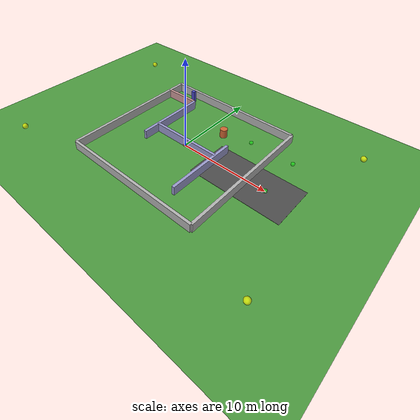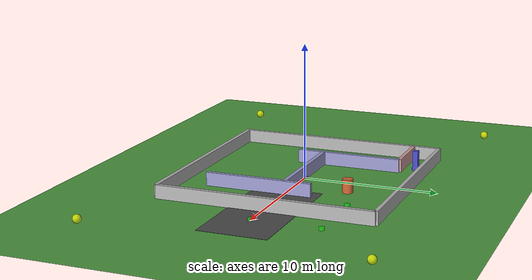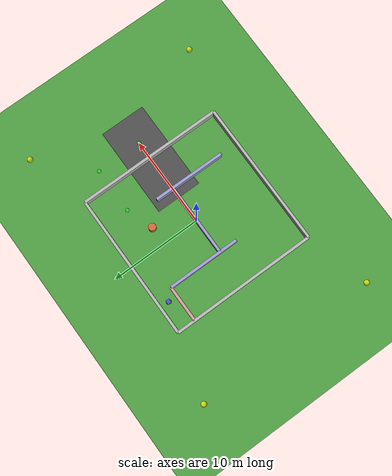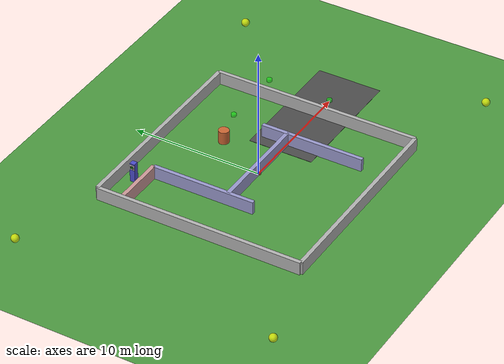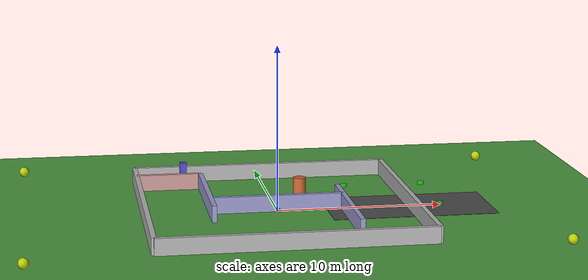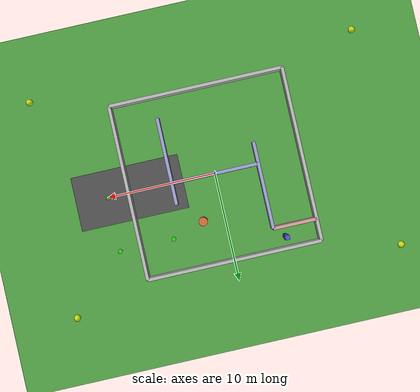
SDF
<?xml version="1.0" ?>
<sdf version="1.6">
  <world name="test_yard">

    <!-- Physics -->
    <physics type="ode">
      <max_step_size>0.001</max_step_size>
      <real_time_factor>1</real_time_factor>
      <real_time_update_rate>1000</real_time_update_rate>
    </physics>

    <!-- Gazebo ROS State Plugin (enables set_entity_state service) -->
    <plugin name="gazebo_ros_state" filename="libgazebo_ros_state.so">
      <ros>
        <namespace>/gazebo</namespace>
      </ros>
      <update_rate>1.0</update_rate>
    </plugin>

    <!-- Lighting -->
    <include>
      <uri>model://sun</uri>
    </include>

    <!-- Ground plane (grass texture) -->
    <model name="ground_plane">
      <static>true</static>
      <link name="link">
        <collision name="collision">
          <geometry>
            <plane>
              <normal>0 0 1</normal>
              <size>100 100</size>
            </plane>
          </geometry>
          <surface>
            <friction>
              <ode>
                <mu>0.8</mu>
                <mu2>0.8</mu2>
              </ode>
            </friction>
          </surface>
        </collision>
        <visual name="visual">
          <cast_shadows>false</cast_shadows>
          <geometry>
            <plane>
              <normal>0 0 1</normal>
              <size>100 100</size>
            </plane>
          </geometry>
          <material>
            <script>
              <uri>file://media/materials/scripts/gazebo.material</uri>
              <name>Gazebo/Grass</name>
            </script>
          </material>
        </visual>
      </link>
    </model>

    <!-- Simple Maze for Obstacle Avoidance Testing -->
    <!-- Maze layout: corridors ~2.5m wide with turns and dead end -->
    <!-- Wall height: 1.0m (detectable by LiDAR) -->
    <!-- Wall thickness: 0.3m -->

    <!-- Maze outer walls (forming perimeter) -->
    <!-- North wall -->
    <model name="maze_wall_north">
      <pose>0 8 0.5 0 0 0</pose>
      <static>true</static>
      <link name="link">
        <collision name="collision">
          <geometry>
            <box>
              <size>16.0 0.3 1.0</size>
            </box>
          </geometry>
        </collision>
        <visual name="visual">
          <geometry>
            <box>
              <size>16.0 0.3 1.0</size>
            </box>
          </geometry>
          <material>
            <ambient>0.7 0.7 0.7 1</ambient>
            <diffuse>0.7 0.7 0.7 1</diffuse>
          </material>
        </visual>
      </link>
    </model>

    <!-- South wall -->
    <model name="maze_wall_south">
      <pose>0 -8 0.5 0 0 0</pose>
      <static>true</static>
      <link name="link">
        <collision name="collision">
          <geometry>
            <box>
              <size>16.0 0.3 1.0</size>
            </box>
          </geometry>
        </collision>
        <visual name="visual">
          <geometry>
            <box>
              <size>16.0 0.3 1.0</size>
            </box>
          </geometry>
          <material>
            <ambient>0.7 0.7 0.7 1</ambient>
            <diffuse>0.7 0.7 0.7 1</diffuse>
          </material>
        </visual>
      </link>
    </model>

    <!-- West wall -->
    <model name="maze_wall_west">
      <pose>-8 0 0.5 0 0 0</pose>
      <static>true</static>
      <link name="link">
        <collision name="collision">
          <geometry>
            <box>
              <size>0.3 16.0 1.0</size>
            </box>
          </geometry>
        </collision>
        <visual name="visual">
          <geometry>
            <box>
              <size>0.3 16.0 1.0</size>
            </box>
          </geometry>
          <material>
            <ambient>0.7 0.7 0.7 1</ambient>
            <diffuse>0.7 0.7 0.7 1</diffuse>
          </material>
        </visual>
      </link>
    </model>

    <!-- East wall -->
    <model name="maze_wall_east">
      <pose>8 0 0.5 0 0 0</pose>
      <static>true</static>
      <link name="link">
        <collision name="collision">
          <geometry>
            <box>
              <size>0.3 16.0 1.0</size>
            </box>
          </geometry>
        </collision>
        <visual name="visual">
          <geometry>
            <box>
              <size>0.3 16.0 1.0</size>
            </box>
          </geometry>
          <material>
            <ambient>0.7 0.7 0.7 1</ambient>
            <diffuse>0.7 0.7 0.7 1</diffuse>
          </material>
        </visual>
      </link>
    </model>

    <!-- Internal maze walls creating corridors -->
    <!-- Vertical divider wall 1 (creates main corridor on left) -->
    <model name="maze_divider_1">
      <pose>-4 2 0.5 0 0 0</pose>
      <static>true</static>
      <link name="link">
        <collision name="collision">
          <geometry>
            <box>
              <size>0.3 8.0 1.0</size>
            </box>
          </geometry>
        </collision>
        <visual name="visual">
          <geometry>
            <box>
              <size>0.3 8.0 1.0</size>
            </box>
          </geometry>
          <material>
            <ambient>0.6 0.6 0.8 1</ambient>
            <diffuse>0.6 0.6 0.8 1</diffuse>
          </material>
        </visual>
      </link>
    </model>

    <!-- Horizontal wall 1 (creates turn) -->
    <model name="maze_horizontal_1">
      <pose>0 0 0.5 0 0 0</pose>
      <static>true</static>
      <link name="link">
        <collision name="collision">
          <geometry>
            <box>
              <size>8.0 0.3 1.0</size>
            </box>
          </geometry>
        </collision>
        <visual name="visual">
          <geometry>
            <box>
              <size>8.0 0.3 1.0</size>
            </box>
          </geometry>
          <material>
            <ambient>0.6 0.6 0.8 1</ambient>
            <diffuse>0.6 0.6 0.8 1</diffuse>
          </material>
        </visual>
      </link>
    </model>

    <!-- Vertical divider wall 2 (creates corridor on right) -->
    <model name="maze_divider_2">
      <pose>4 -2 0.5 0 0 0</pose>
      <static>true</static>
      <link name="link">
        <collision name="collision">
          <geometry>
            <box>
              <size>0.3 8.0 1.0</size>
            </box>
          </geometry>
        </collision>
        <visual name="visual">
          <geometry>
            <box>
              <size>0.3 8.0 1.0</size>
            </box>
          </geometry>
          <material>
            <ambient>0.6 0.6 0.8 1</ambient>
            <diffuse>0.6 0.6 0.8 1</diffuse>
          </material>
        </visual>
      </link>
    </model>

    <!-- Dead-end wall (tests backing up behavior) -->
    <model name="maze_deadend">
      <pose>-6 6 0.5 0 0 0</pose>
      <static>true</static>
      <link name="link">
        <collision name="collision">
          <geometry>
            <box>
              <size>4.0 0.3 1.0</size>
            </box>
          </geometry>
        </collision>
        <visual name="visual">
          <geometry>
            <box>
              <size>4.0 0.3 1.0</size>
            </box>
          </geometry>
          <material>
            <ambient>0.8 0.6 0.6 1</ambient>
            <diffuse>0.8 0.6 0.6 1</diffuse>
          </material>
        </visual>
      </link>
    </model>

    <!-- Obstacle in corridor (tests navigation around object in tight space) -->
    <model name="maze_obstacle_cylinder">
      <pose>2 4 0.5 0 0 0</pose>
      <static>true</static>
      <link name="link">
        <collision name="collision">
          <geometry>
            <cylinder>
              <radius>0.4</radius>
              <length>1.0</length>
            </cylinder>
          </geometry>
        </collision>
        <visual name="visual">
          <geometry>
            <cylinder>
              <radius>0.4</radius>
              <length>1.0</length>
            </cylinder>
          </geometry>
          <material>
            <ambient>0.8 0.4 0.2 1</ambient>
            <diffuse>0.8 0.4 0.2 1</diffuse>
          </material>
        </visual>
      </link>
    </model>

    <!-- Pavement section (different friction) -->
    <model name="pavement">
      <pose>8 0 0.01 0 0 0</pose>
      <static>true</static>
      <link name="link">
        <collision name="collision">
          <geometry>
            <box>
              <size>10.0 5.0 0.02</size>
            </box>
          </geometry>
          <surface>
            <friction>
              <ode>
                <mu>1.0</mu>
                <mu2>1.0</mu2>
              </ode>
            </friction>
          </surface>
        </collision>
        <visual name="visual">
          <geometry>
            <box>
              <size>10.0 5.0 0.02</size>
            </box>
          </geometry>
          <material>
            <ambient>0.3 0.3 0.3 1</ambient>
            <diffuse>0.3 0.3 0.3 1</diffuse>
          </material>
        </visual>
      </link>
    </model>

    <!-- GPS waypoint markers (visual only, for reference) -->
    <model name="waypoint_1">
      <pose>10 0 0.1 0 0 0</pose>
      <static>true</static>
      <link name="link">
        <visual name="visual">
          <geometry>
            <cylinder>
              <radius>0.2</radius>
              <length>0.2</length>
            </cylinder>
          </geometry>
          <material>
            <ambient>0 1 0 0.5</ambient>
            <diffuse>0 1 0 0.5</diffuse>
          </material>
        </visual>
      </link>
    </model>

    <model name="waypoint_2">
      <pose>10 5 0.1 0 0 0</pose>
      <static>true</static>
      <link name="link">
        <visual name="visual">
          <geometry>
            <cylinder>
              <radius>0.2</radius>
              <length>0.2</length>
            </cylinder>
          </geometry>
          <material>
            <ambient>0 1 0 0.5</ambient>
            <diffuse>0 1 0 0.5</diffuse>
          </material>
        </visual>
      </link>
    </model>

    <model name="waypoint_3">
      <pose>5 5 0.1 0 0 0</pose>
      <static>true</static>
      <link name="link">
        <visual name="visual">
          <geometry>
            <cylinder>
              <radius>0.2</radius>
              <length>0.2</length>
            </cylinder>
          </geometry>
          <material>
            <ambient>0 1 0 0.5</ambient>
            <diffuse>0 1 0 0.5</diffuse>
          </material>
        </visual>
      </link>
    </model>

    <model name="waypoint_4">
      <pose>0 0 0.1 0 0 0</pose>
      <static>true</static>
      <link name="link">
        <visual name="visual">
          <geometry>
            <cylinder>
              <radius>0.2</radius>
              <length>0.2</length>
            </cylinder>
          </geometry>
          <material>
            <ambient>1 0 0 0.5</ambient>
            <diffuse>1 0 0 0.5</diffuse>
          </material>
        </visual>
      </link>
    </model>

    <!-- Include person model from external file (enables plugins to load correctly) -->
    <include>
      <uri>model://person_with_apriltag</uri>
      <pose>-5 7 0 0 0 0</pose>
    </include>

    <!-- Geofence boundary markers (for testing geofence logic) -->
    <model name="geofence_corner_ne">
      <pose>15 10 0.5 0 0 0</pose>
      <static>true</static>
      <link name="link">
        <visual name="visual">
          <geometry>
            <sphere>
              <radius>0.3</radius>
            </sphere>
          </geometry>
          <material>
            <ambient>1 1 0 0.7</ambient>
            <diffuse>1 1 0 0.7</diffuse>
          </material>
        </visual>
      </link>
    </model>

    <model name="geofence_corner_nw">
      <pose>-15 10 0.5 0 0 0</pose>
      <static>true</static>
      <link name="link">
        <visual name="visual">
          <geometry>
            <sphere>
              <radius>0.3</radius>
            </sphere>
          </geometry>
          <material>
            <ambient>1 1 0 0.7</ambient>
            <diffuse>1 1 0 0.7</diffuse>
          </material>
        </visual>
      </link>
    </model>

    <model name="geofence_corner_se">
      <pose>15 -10 0.5 0 0 0</pose>
      <static>true</static>
      <link name="link">
        <visual name="visual">
          <geometry>
            <sphere>
              <radius>0.3</radius>
            </sphere>
          </geometry>
          <material>
            <ambient>1 1 0 0.7</ambient>
            <diffuse>1 1 0 0.7</diffuse>
          </material>
        </visual>
      </link>
    </model>

    <model name="geofence_corner_sw">
      <pose>-15 -10 0.5 0 0 0</pose>
      <static>true</static>
      <link name="link">
        <visual name="visual">
          <geometry>
            <sphere>
              <radius>0.3</radius>
            </sphere>
          </geometry>
          <material>
            <ambient>1 1 0 0.7</ambient>
            <diffuse>1 1 0 0.7</diffuse>
          </material>
        </visual>
      </link>
    </model>

  </world>
</sdf>

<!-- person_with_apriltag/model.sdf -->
<sdf version="1.6">
  <model name="person_with_apriltag">
    <pose>-5 7 0 0 0 0</pose>

    <!-- Main body (person-sized box) -->
    <link name="base_link">
      <inertial>
        <mass>50.0</mass>
        <inertia>
          <ixx>3.33</ixx>
          <iyy>3.33</iyy>
          <izz>0.67</izz>
        </inertia>
      </inertial>

      <!-- Body collision -->
      <collision name="body_collision">
        <pose>0 0 0.75 0 0 0</pose>
        <geometry>
          <box>
            <size>0.4 0.4 1.5</size>
          </box>
        </geometry>
      </collision>

      <!-- Body visual (simple person shape) -->
      <visual name="body_visual">
        <pose>0 0 0.75 0 0 0</pose>
        <geometry>
          <box>
            <size>0.4 0.4 1.5</size>
          </box>
        </geometry>
        <material>
          <ambient>0.3 0.3 0.8 1</ambient>
          <diffuse>0.3 0.3 0.8 1</diffuse>
        </material>
      </visual>

      <!-- AprilTag on the back -->
      <visual name="apriltag_board">
        <pose>-0.21 0 1.2 0 1.5708 0</pose>  <!-- On back, standing upright -->
        <geometry>
          <box>
            <size>0.4 0.4 0.02</size>
          </box>
        </geometry>
        <material>
          <ambient>1 1 1 1</ambient>
          <diffuse>1 1 1 1</diffuse>
        </material>
      </visual>

      <!-- Black AprilTag pattern -->
      <visual name="apriltag_pattern">
        <pose>-0.22 0 1.2 0 1.5708 0</pose>
        <geometry>
          <box>
            <size>0.25 0.25 0.01</size>
          </box>
        </geometry>
        <material>
          <ambient>0 0 0 1</ambient>
          <diffuse>0 0 0 1</diffuse>
        </material>
      </visual>

      <!-- Green indicator center -->
      <visual name="apriltag_indicator">
        <pose>-0.23 0 1.2 0 1.5708 0</pose>
        <geometry>
          <box>
            <size>0.1 0.1 0.005</size>
          </box>
        </geometry>
        <material>
          <ambient>0 1 0 1</ambient>
          <diffuse>0 1 0 1</diffuse>
          <emissive>0 0.5 0 1</emissive>
        </material>
      </visual>
    </link>

    <!-- Left wheel -->
    <link name="left_wheel">
      <pose>0 0.25 0.1 1.5708 0 0</pose>
      <inertial>
        <mass>2.0</mass>
        <inertia>
          <ixx>0.01</ixx>
          <iyy>0.01</iyy>
          <izz>0.01</izz>
        </inertia>
      </inertial>
      <collision name="collision">
        <geometry>
          <cylinder>
            <radius>0.1</radius>
            <length>0.05</length>
          </cylinder>
        </geometry>
      </collision>
      <visual name="visual">
        <geometry>
          <cylinder>
            <radius>0.1</radius>
            <length>0.05</length>
          </cylinder>
        </geometry>
        <material>
          <ambient>0.2 0.2 0.2 1</ambient>
          <diffuse>0.2 0.2 0.2 1</diffuse>
        </material>
      </visual>
    </link>

    <!-- Right wheel -->
    <link name="right_wheel">
      <pose>0 -0.25 0.1 1.5708 0 0</pose>
      <inertial>
        <mass>2.0</mass>
        <inertia>
          <ixx>0.01</ixx>
          <iyy>0.01</iyy>
          <izz>0.01</izz>
        </inertia>
      </inertial>
      <collision name="collision">
        <geometry>
          <cylinder>
            <radius>0.1</radius>
            <length>0.05</length>
          </cylinder>
        </geometry>
      </collision>
      <visual name="visual">
        <geometry>
          <cylinder>
            <radius>0.1</radius>
            <length>0.05</length>
          </cylinder>
        </geometry>
        <material>
          <ambient>0.2 0.2 0.2 1</ambient>
          <diffuse>0.2 0.2 0.2 1</diffuse>
        </material>
      </visual>
    </link>

    <!-- Caster wheel (front) -->
    <link name="caster">
      <pose>0.2 0 0.05 0 0 0</pose>
      <inertial>
        <mass>0.5</mass>
        <inertia>
          <ixx>0.001</ixx>
          <iyy>0.001</iyy>
          <izz>0.001</izz>
        </inertia>
      </inertial>
      <collision name="collision">
        <geometry>
          <sphere>
            <radius>0.05</radius>
          </sphere>
        </geometry>
        <surface>
          <friction>
            <ode>
              <mu>0.0</mu>
              <mu2>0.0</mu2>
            </ode>
          </friction>
        </surface>
      </collision>
      <visual name="visual">
        <geometry>
          <sphere>
            <radius>0.05</radius>
          </sphere>
        </geometry>
        <material>
          <ambient>0.3 0.3 0.3 1</ambient>
          <diffuse>0.3 0.3 0.3 1</diffuse>
        </material>
      </visual>
    </link>

    <!-- Joints -->
    <joint name="left_wheel_joint" type="revolute">
      <parent>base_link</parent>
      <child>left_wheel</child>
      <axis>
        <xyz>0 0 1</xyz>
      </axis>
    </joint>

    <joint name="right_wheel_joint" type="revolute">
      <parent>base_link</parent>
      <child>right_wheel</child>
      <axis>
        <xyz>0 0 1</xyz>
      </axis>
    </joint>

    <joint name="caster_joint" type="ball">
      <parent>base_link</parent>
      <child>caster</child>
    </joint>

    <!-- Differential drive plugin -->
    <plugin name="differential_drive_controller" filename="libgazebo_ros_diff_drive.so">
      <update_rate>50</update_rate>
      <left_joint>left_wheel_joint</left_joint>
      <right_joint>right_wheel_joint</right_joint>
      <wheel_separation>0.5</wheel_separation>
      <wheel_diameter>0.2</wheel_diameter>
      <max_wheel_torque>20</max_wheel_torque>
      <command_topic>person_cmd_vel</command_topic>
      <odometry_topic>person_odom</odometry_topic>
      <odometry_frame>odom</odometry_frame>
      <robot_base_frame>base_link</robot_base_frame>
      <publish_odom>true</publish_odom>
      <publish_odom_tf>false</publish_odom_tf>
      <publish_wheel_tf>false</publish_wheel_tf>
    </plugin>
  </model>
</sdf>
